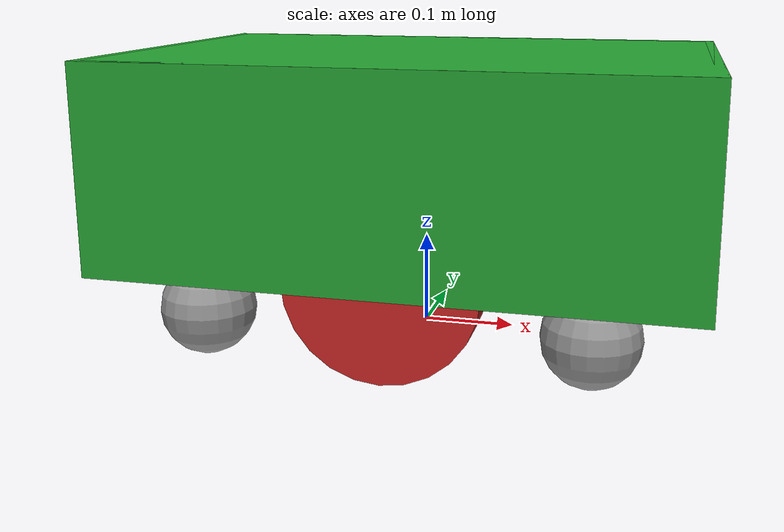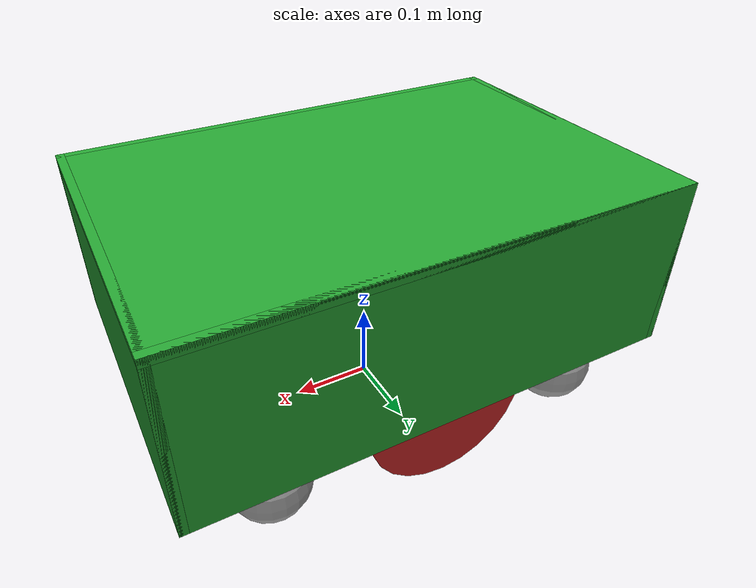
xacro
<?xml version="1.0" encoding="UTF-8" ?>
<robot xmlns:xacro="http://www.ros.org/wiki/xacro">

    <xacro:property name="epsilon" value="0.002"/>

    <xacro:property name="base_length" value="0.6"/>
    <xacro:property name="base_width" value="0.4"/>
    <xacro:property name="base_height" value="0.2"/>
    <xacro:property name="boundary_thickness" value="0.01"/>

    <xacro:property name="wheel_radius" value="${base_height / 2.0}"/>
    <xacro:property name="wheel_length" value="${wheel_radius / 2.0}"/>

    <xacro:property name="caster_wheel_radius" value="${wheel_radius / 2.0}" />

    <xacro:macro name="wheel_link" params="prefix">
        <link name="${prefix}_wheel_link">
            <visual>
                <geometry>
                    <cylinder radius="${wheel_radius}" length="${wheel_length}"/>
                </geometry>
                <origin xyz="0 0 0" rpy="${pi / 2.0} 0 0" />
                <material name="red" />
            </visual>
            <collision>
                <geometry>
                    <sphere radius="${wheel_radius}" />
                </geometry>
                <origin xyz="0 0 0" rpy="${pi / 2.0} 0 0" />
            </collision>
            <xacro:cylinder_inertial mass="0.5" radius="${wheel_radius}" length="${wheel_length}" origin_xyz="0 0 0" origin_rpy="${pi / 2.0} 0 0"/>
        </link>
    </xacro:macro>

    <xacro:macro name="caster_wheel" params="prefix">
        <link name="${prefix}_caster_wheel">
            <visual>
                <geometry>
                    <sphere radius="${caster_wheel_radius}" />
                </geometry>
                <material name="gray" />
                <origin xyz="0 0 0" rpy="0 0 0" />
            </visual>
            <collision>
                <geometry>
                    <sphere radius="${caster_wheel_radius}" />
                </geometry>
                <origin xyz="0 0 0" rpy="0 0 0" />
            </collision>
            <xacro:sphere_inertial mass="0.25" radius="${caster_wheel_radius}" origin_xyz="0 0 0" origin_rpy="0 0 0"/>
        </link>
    </xacro:macro>

    <link name="base_footprint"/>

    <joint name="base_footprint_joint" type="fixed">
        <parent link="base_footprint"/>
        <child link="base_link"/>
        <origin xyz="0 0 ${base_height / 2.0 + wheel_radius}" rpy="0 0 0"/>
    </joint>

    <link name="base_link" >
        <xacro:box_inertial mass="1.0" size="${base_length} ${base_width} ${base_height}" origin_xyz="0 0 0" origin_rpy="0 0 0"/>
    </link>

    <joint name="base_left_joint" type="fixed">
        <parent link="base_link"/>
        <child link="base_left_link"/>
        <origin xyz="0 ${+ (base_width + boundary_thickness) / 2.0} 0" rpy="0 0 0"/>
    </joint>

    <link name="base_left_link">
        <visual>
            <geometry>
                <box size="${base_length + 2.0 * boundary_thickness} ${boundary_thickness} ${base_height + 2.0 * boundary_thickness}"/>
            </geometry>
            <material name="green"/>
            <origin xyz="0 0 0" rpy="0 0 0"/>
        </visual>
        <collision>
            <geometry>
                <box size="${base_length + 2.0 * boundary_thickness} ${boundary_thickness} ${base_height + 2.0 * boundary_thickness}"/>
            </geometry>
            <origin xyz="0 0 0" rpy="0 0 0"/>
        </collision>
        <xacro:box_inertial mass="1.0" size="${base_length + 2.0 * boundary_thickness} ${boundary_thickness} ${base_height + 2.0 * boundary_thickness}" origin_xyz="0 0 0" origin_rpy="0 0 0"/>
    </link>

    <joint name="base_right_joint" type="fixed">
        <parent link="base_link"/>
        <child link="base_right_link"/>
        <origin xyz="0 ${- (base_width + boundary_thickness) / 2.0} 0" rpy="0 0 0"/>
    </joint>

    <link name="base_right_link">
        <visual>
            <geometry>
                <box size="${base_length + 2.0 * boundary_thickness} ${boundary_thickness} ${base_height + 2.0 * boundary_thickness}"/>
            </geometry>
            <material name="green"/>
            <origin xyz="0 0 0" rpy="0 0 0"/>
        </visual>
        <collision>
            <geometry>
                <box size="${base_length + 2.0 * boundary_thickness} ${boundary_thickness} ${base_height + 2.0 * boundary_thickness}"/>
            </geometry>
            <origin xyz="0 0 0" rpy="0 0 0"/>
        </collision>
        <xacro:box_inertial mass="1.0" size="${base_length + 2.0 * boundary_thickness} ${boundary_thickness} ${base_height + 2.0 * boundary_thickness}" origin_xyz="0 0 0" origin_rpy="0 0 0"/>
    </link>

    <joint name="base_front_joint" type="fixed">
        <parent link="base_link"/>
        <child link="base_front_link"/>
        <origin xyz="${+ (base_length + boundary_thickness) / 2.0} 0 0" rpy="0 0 0"/>
    </joint>

    <link name="base_front_link">
        <visual>
            <geometry>
                <box size="${boundary_thickness} ${base_width + 2.0 * boundary_thickness} ${base_height + 2.0 * boundary_thickness}"/>
            </geometry>
            <material name="green"/>
            <origin xyz="0 0 0" rpy="0 0 0"/>
        </visual>
        <collision>
            <geometry>
                <box size="${boundary_thickness} ${base_width + 2.0 * boundary_thickness} ${base_height + 2.0 * boundary_thickness}"/>
            </geometry>
            <origin xyz="0 0 0" rpy="0 0 0"/>
        </collision>
        <xacro:box_inertial mass="1.0" size="${boundary_thickness} ${base_width + 2.0 * boundary_thickness} ${base_height + 2.0 * boundary_thickness}" origin_xyz="0 0 0" origin_rpy="0 0 0"/>
    </link>

    <joint name="base_rear_joint" type="fixed">
        <parent link="base_link"/>
        <child link="base_rear_link"/>
        <origin xyz="${- (base_length + boundary_thickness) / 2.0} 0 0" rpy="0 0 0"/>
    </joint>

    <link name="base_rear_link">
        <visual>
            <geometry>
                <box size="${boundary_thickness} ${base_width + 2.0 * boundary_thickness} ${base_height + 2.0 * boundary_thickness}"/>
            </geometry>
            <material name="green"/>
            <origin xyz="0 0 0" rpy="0 0 0"/>
        </visual>
        <collision>
            <geometry>
                <box size="${boundary_thickness} ${base_width + 2.0 * boundary_thickness} ${base_height + 2.0 * boundary_thickness}"/>
            </geometry>
            <origin xyz="0 0 0" rpy="0 0 0"/>
        </collision>
        <xacro:box_inertial mass="1.0" size="${boundary_thickness} ${base_width + 2.0 * boundary_thickness} ${base_height + 2.0 * boundary_thickness}" origin_xyz="0 0 0" origin_rpy="0 0 0"/>
    </link>

    <joint name="base_top_joint" type="fixed">
        <parent link="base_link"/>
        <child link="base_top_link"/>
        <origin xyz="0 0 ${+ (base_height + boundary_thickness) / 2.0}" rpy="0 0 0"/>
    </joint>

    <link name="base_top_link">
        <visual>
            <geometry>
                <box size="${base_length + 2.0 * boundary_thickness} ${base_width + 2.0 * boundary_thickness} ${boundary_thickness}"/>
            </geometry>
            <material name="green"/>
            <origin xyz="0 0 0" rpy="0 0 0"/>
        </visual>
        <collision>
            <geometry>
                <box size="${base_length + 2.0 * boundary_thickness} ${base_width + 2.0 * boundary_thickness} ${boundary_thickness}"/>
            </geometry>
            <origin xyz="0 0 0" rpy="0 0 0"/>
        </collision>
        <xacro:box_inertial mass="1.0" size="${base_length + 2.0 * boundary_thickness} ${base_width + 2.0 * boundary_thickness} ${boundary_thickness}" origin_xyz="0 0 0" origin_rpy="0 0 0"/>
    </link>

    <joint name="base_left_wheel_joint" type="continuous">
        <parent link="base_link"/>
        <child link="left_wheel_link"/>
        <origin xyz="0 ${+ (base_width - (wheel_length + epsilon)) / 2.0} ${- base_height / 2.0}" rpy="0 0 0"/>
        <axis xyz="0 1 0" />
    </joint>

    <xacro:wheel_link prefix="left" />

    <joint name="base_right_wheel_joint" type="continuous">
        <parent link="base_link"/>
        <child link="right_wheel_link"/>
        <origin xyz="0 ${- (base_width - (wheel_length + epsilon)) / 2.0 + epsilon} ${- base_height / 2.0}" rpy="0 0 0"/>
        <axis xyz="0 1 0" />
    </joint>

    <xacro:wheel_link prefix="right" />

    <joint name="base_rear_left_caster_wheel_joint" type="fixed">
        <parent link="base_link"/>
        <child link="rear_left_caster_wheel" />
        <origin xyz="${- base_length / 3.0} ${+ (base_width / 2.0 - caster_wheel_radius)} ${- (base_height / 2.0 + caster_wheel_radius)}" rpy="0 0 0" />
    </joint>

    <xacro:caster_wheel prefix="rear_left"/>

    <joint name="base_rear_right_caster_wheel_joint" type="fixed">
        <parent link="base_link"/>
        <child link="rear_right_caster_wheel" />
        <origin xyz="${- base_length / 3.0} ${- (base_width / 2.0 - caster_wheel_radius)} ${- (base_height / 2.0 + caster_wheel_radius)}" rpy="0 0 0" />
    </joint>

    <xacro:caster_wheel prefix="rear_right"/>

    <joint name="base_front_left_caster_wheel_joint" type="fixed">
        <parent link="base_link"/>
        <child link="front_left_caster_wheel" />
        <origin xyz="${+ base_length / 3.0} ${+ (base_width / 2.0 - caster_wheel_radius)} ${- (base_height / 2.0 + caster_wheel_radius)}" rpy="0 0 0" />
    </joint>

    <xacro:caster_wheel prefix="front_left"/>

    <joint name="base_front_right_caster_wheel_joint" type="fixed">
        <parent link="base_link"/>
        <child link="front_right_caster_wheel" />
        <origin xyz="${+ base_length / 3.0} ${- (base_width / 2.0 - caster_wheel_radius)} ${- (base_height / 2.0 + caster_wheel_radius)}" rpy="0 0 0" />
    </joint>

    <xacro:caster_wheel prefix="front_right"/>

</robot>
